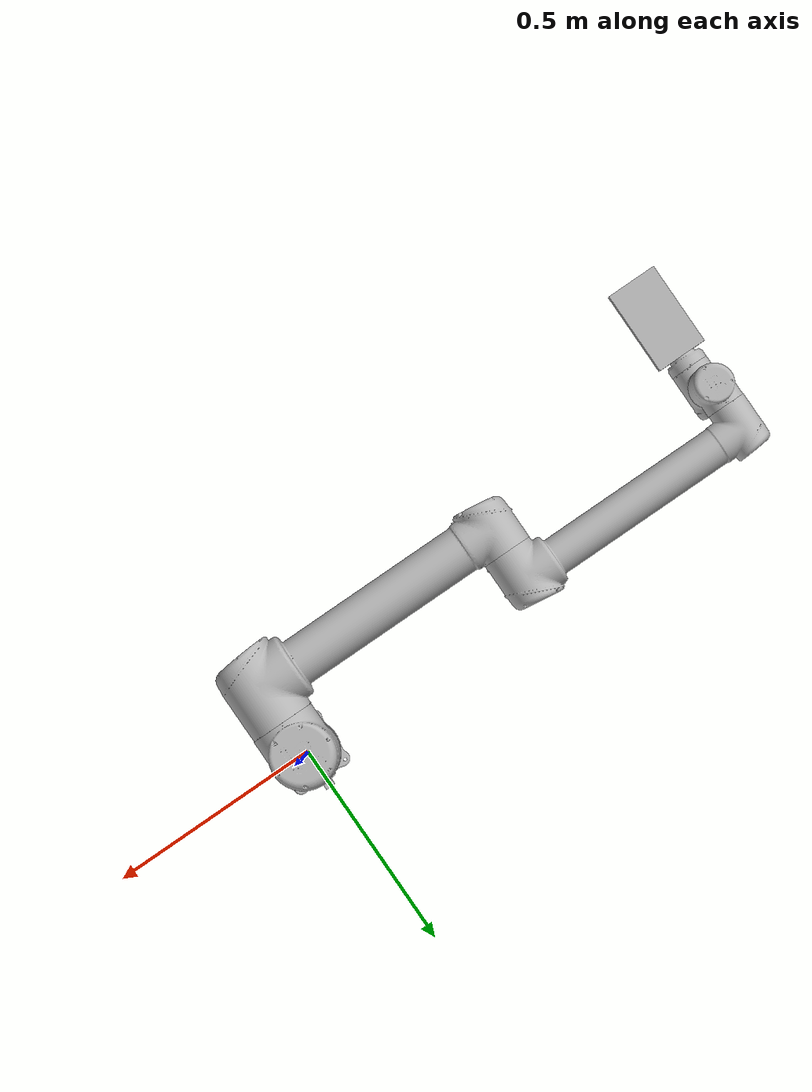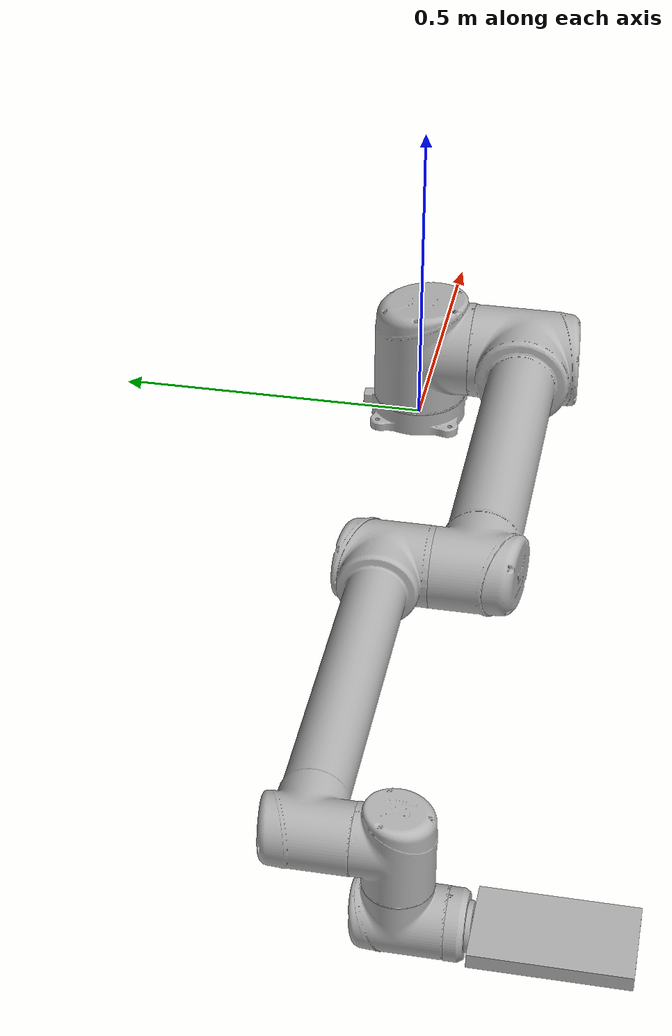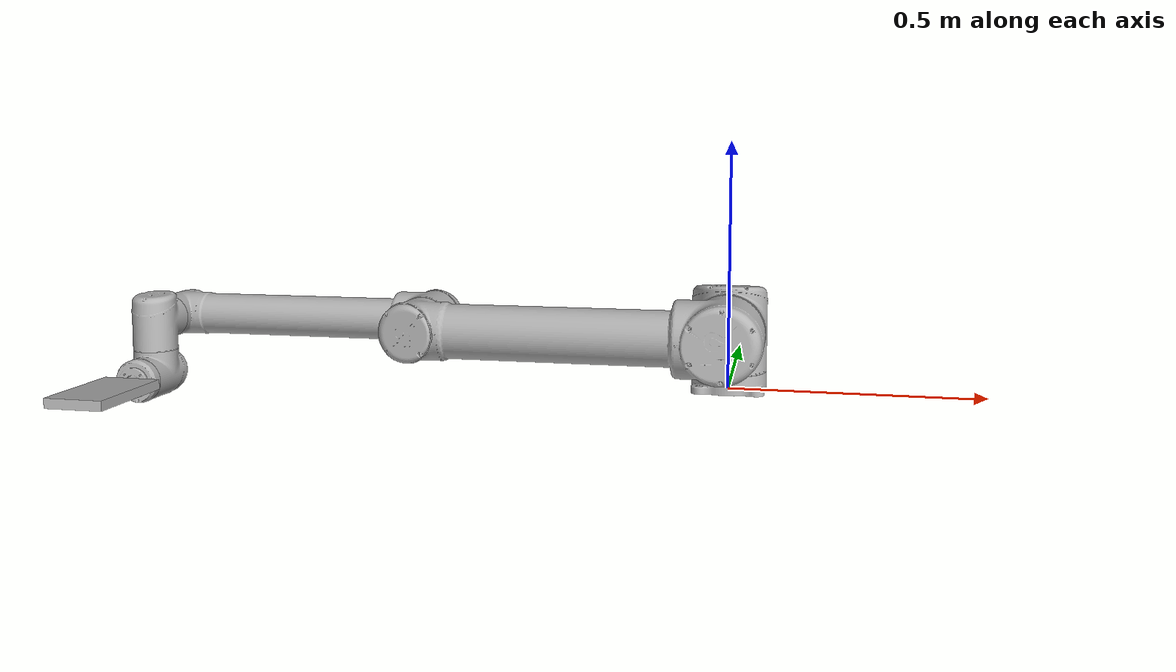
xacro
<?xml version="1.0"?>
<robot xmlns:xacro="http://www.ros.org/wiki/xacro"
       name="ur10" >

  <!-- common stuff -->
  <xacro:include filename="$(find ur_description)/urdf/common.gazebo.xacro" />

  <!-- ur10 -->
  <xacro:include filename="$(find ur_description)/urdf/ur10.urdf.xacro" />

  <!-- arm -->
  <xacro:ur10_robot prefix="" joint_limited="false"/>

  <!--xacro:ur10_robot prefix="u0_" joint_limited="false"/-->

  <link name="world" />

  <joint name="world_joint" type="fixed">
    <origin xyz="0.0 0.0 0.0" rpy="0.0 0.0 3.14159265" />
    <parent link="world" />
    <child link = "base_link" />
  </joint>

</robot>

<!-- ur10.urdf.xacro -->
<robot xmlns:xacro="http://www.ros.org/wiki/xacro">

<!--
  Author: Kelsey Hawkins
  Contributers: Jimmy Da Silva, Ajit Krisshna N L, Muhammad Asif Rana
-->

  <xacro:include filename="$(find ur_description)/urdf/ur.transmission.xacro" />
  <xacro:include filename="$(find ur_description)/urdf/ur.gazebo.xacro" />

  <property name="pi" value="3.14159265" />

  <!-- Inertia parameters -->
  <property name="base_mass" value="4.0" />  <!-- This mass might be incorrect -->
  <property name="shoulder_mass" value="7.778" />
  <property name="upper_arm_mass" value="12.93" />
  <property name="forearm_mass" value="3.87" />
  <property name="wrist_1_mass" value="1.96" />
  <property name="wrist_2_mass" value="1.96" />
  <property name="wrist_3_mass" value="0.202" />

  <property name="shoulder_cog" value="0.00008 0.00244 -0.037" />
  <property name="upper_arm_cog" value="0.00001 0.15061 0.38757" />
  <property name="forearm_cog" value="-0.00012 0.06112 0.1984" />
  <property name="wrist_1_cog" value="-0.00021 -0.00112 0.02269" />
  <property name="wrist_2_cog" value="-0.00021 0.00112 0.002269" />
  <property name="wrist_3_cog" value="0 -0.001156 -0.00149" />

  <!-- Kinematic model -->
  <!-- Properties from urcontrol.conf -->
  <property name="ur10_d1" value="0.1273" />
  <property name="ur10_a2" value="-0.612" />
  <property name="ur10_a3" value="-0.5723" />
  <property name="ur10_d4" value="0.163941" />
  <property name="ur10_d5" value="0.1157" />
  <property name="ur10_d6" value="0.0922" />

  <!-- Arbitrary offsets for shoulder/elbow joints -->
  <property name="shoulder_offset" value="0.220941" />  <!-- measured from model -->
  <property name="elbow_offset" value="-0.1719" /> <!-- measured from model -->

  <!-- link lengths used in model -->
  <property name="shoulder_height" value="${ur10_d1}" />
  <property name="upper_arm_length" value="${-ur10_a2}" />
  <property name="forearm_length" value="${-ur10_a3}" />
  <property name="wrist_1_length" value="${ur10_d4 - elbow_offset - shoulder_offset}" />
  <property name="wrist_2_length" value="${ur10_d5}" />
  <property name="wrist_3_length" value="${ur10_d6}" />

  <xacro:macro name="cylinder_inertial" params="radius length mass *origin">
    <inertial>
      <mass value="${mass}" />
      <insert_block name="origin" />
      <inertia ixx="${0.0833333 * mass * (3 * radius * radius + length * length)}" ixy="0.0" ixz="0.0"
        iyy="${0.0833333 * mass * (3 * radius * radius + length * length)}" iyz="0.0"
        izz="${0.5 * mass * radius * radius}" />
    </inertial>
  </xacro:macro>

  <xacro:macro name="ur10_robot" params="prefix joint_limited">

    <link name="${prefix}base_link" >
      <visual>
        <geometry>
          <mesh filename="package://ur_description/meshes/ur10/visual/base.dae"/>
        </geometry>
        <material name="LightGrey">
          <color rgba="0.7 0.7 0.7 1.0"/>
        </material>
      </visual>
      <collision>
        <geometry>
          <mesh filename="package://ur_description/meshes/ur10/collision/base.stl"/>
        </geometry>
      </collision>
      <xacro:cylinder_inertial radius="0.075" length="0.038" mass="${base_mass}">
        <origin xyz="0.0 0.0 0.0" rpy="0 0 0" />
      </xacro:cylinder_inertial>
    </link>

    <joint name="${prefix}shoulder_pan_joint" type="revolute">
      <parent link="${prefix}base_link" />
      <child link = "${prefix}shoulder_link" />
      <origin xyz="0.0 0.0 ${shoulder_height}" rpy="0.0 0.0 0.0" />
      <axis xyz="0 0 1" />
      <xacro:unless value="${joint_limited}">
        <limit lower="${-2.0 * pi}" upper="${2.0 * pi}" effort="930" velocity="21.6"/>
      </xacro:unless>
      <xacro:if value="${joint_limited}">
        <limit lower="${-pi}" upper="${pi}" effort="930" velocity="21.6"/>
      </xacro:if>
      <dynamics damping="0.0" friction="0.0"/>
    </joint>

    <link name="${prefix}shoulder_link">
      <visual>
        <geometry>
          <mesh filename="package://ur_description/meshes/ur10/visual/shoulder.dae"/>
        </geometry>
        <material name="LightGrey">
          <color rgba="0.7 0.7 0.7 1.0"/>
        </material>
      </visual>
      <collision>
        <geometry>
          <mesh filename="package://ur_description/meshes/ur10/collision/shoulder.stl"/>
        </geometry>
      </collision>
      <xacro:cylinder_inertial radius="0.075" length="0.178" mass="${shoulder_mass}">
        <origin xyz="0.0 0.0 0.0" rpy="0 0 0" />
      </xacro:cylinder_inertial>
    </link>

    <joint name="${prefix}shoulder_lift_joint" type="revolute">
      <parent link="${prefix}shoulder_link" />
      <child link = "${prefix}upper_arm_link" />
      <origin xyz="0.0 ${shoulder_offset} 0.0" rpy="0.0 ${pi / 2.0} 0.0" />
      <axis xyz="0 1 0" />
      <xacro:unless value="${joint_limited}">
        <limit lower="${-2.0 * pi}" upper="${2.0 * pi}" effort="930" velocity="21.6"/>
      </xacro:unless>
      <xacro:if value="${joint_limited}">
        <limit lower="${-pi}" upper="${pi}" effort="930" velocity="21.6"/>
      </xacro:if>
      <dynamics damping="0.0" friction="0.0"/>
    </joint>

    <link name="${prefix}upper_arm_link">
      <visual>
        <geometry>
          <mesh filename="package://ur_description/meshes/ur10/visual/upperarm.dae"/>
        </geometry>
        <material name="LightGrey">
          <color rgba="0.7 0.7 0.7 1.0"/>
        </material>
      </visual>
      <collision>
        <geometry>
          <mesh filename="package://ur_description/meshes/ur10/collision/upperarm.stl"/>
        </geometry>
      </collision>
      <xacro:cylinder_inertial radius="0.075" length="${-ur10_a2}" mass="${upper_arm_mass}">
        <origin xyz="0.0 0.0 ${-ur10_a2/2.0}" rpy="0 0 0" />
      </xacro:cylinder_inertial>
    </link>

    <joint name="${prefix}elbow_joint" type="revolute">
      <parent link="${prefix}upper_arm_link" />
      <child link = "${prefix}forearm_link" />
      <origin xyz="0.0 ${elbow_offset} ${upper_arm_length}" rpy="0.0 0.0 0.0" />
      <axis xyz="0 1 0" />
      <xacro:unless value="${joint_limited}">
        <limit lower="${-2.0 * pi}" upper="${2.0 * pi}" effort="150.0" velocity="3.15"/>
      </xacro:unless>
      <xacro:if value="${joint_limited}">
        <limit lower="${-pi}" upper="${pi}" effort="150.0" velocity="3.15"/>
      </xacro:if>
      <dynamics damping="0.0" friction="0.0"/>
    </joint>

    <link name="${prefix}forearm_link">
      <visual>
         <geometry>
          <mesh filename="package://ur_description/meshes/ur10/visual/forearm.dae"/>
        </geometry>
        <material name="LightGrey">
          <color rgba="0.7 0.7 0.7 1.0"/>
        </material>
      </visual>
      <collision>
        <geometry>
          <mesh filename="package://ur_description/meshes/ur10/collision/forearm.stl"/>
        </geometry>
      </collision>
      <xacro:cylinder_inertial radius="0.075" length="${-ur10_a3}" mass="${forearm_mass}">
        <origin xyz="0.0 0.0 ${-ur10_a3/2.0}" rpy="0 0 0" />
      </xacro:cylinder_inertial>
    </link>

    <joint name="${prefix}wrist_1_joint" type="revolute">
      <parent link="${prefix}forearm_link" />
      <child link = "${prefix}wrist_1_link" />
      <origin xyz="0.0 0.0 ${forearm_length}" rpy="0.0 ${pi / 2.0} 0.0" />
      <axis xyz="0 1 0" />
      <xacro:unless value="${joint_limited}">
        <limit lower="${-2.0 * pi}" upper="${2.0 * pi}" effort="54.0" velocity="3.2"/>
      </xacro:unless>
      <xacro:if value="${joint_limited}">
        <limit lower="${-pi}" upper="${pi}" effort="54.0" velocity="3.2"/>
      </xacro:if>
      <dynamics damping="0.0" friction="0.0"/>
    </joint>

    <link name="${prefix}wrist_1_link">
      <visual>
        <geometry>
          <mesh filename="package://ur_description/meshes/ur10/visual/wrist1.dae"/>
        </geometry>
        <material name="LightGrey">
          <color rgba="0.7 0.7 0.7 1.0"/>
        </material>
      </visual>
      <collision>
        <geometry>
          <mesh filename="package://ur_description/meshes/ur10/collision/wrist1.stl"/>
        </geometry>
      </collision>
      <xacro:cylinder_inertial radius="0.075" length="0.12" mass="${wrist_1_mass}">
        <origin xyz="0.0 0.0 0.0" rpy="0 0 0" />
      </xacro:cylinder_inertial>
    </link>

    <joint name="${prefix}wrist_2_joint" type="revolute">
      <parent link="${prefix}wrist_1_link" />
      <child link = "${prefix}wrist_2_link" />
      <origin xyz="0.0 ${wrist_1_length} 0.0" rpy="0.0 0.0 0.0" />
      <axis xyz="0 0 1" />
      <xacro:unless value="${joint_limited}">
        <limit lower="${-2.0 * pi}" upper="${2.0 * pi}" effort="54.0" velocity="3.2"/>
      </xacro:unless>
      <xacro:if value="${joint_limited}">
        <limit lower="${-pi}" upper="${pi}" effort="54.0" velocity="3.2"/>
      </xacro:if>
      <dynamics damping="0.0" friction="0.0"/>
    </joint>

    <link name="${prefix}wrist_2_link">
      <visual>
        <geometry>
          <mesh filename="package://ur_description/meshes/ur10/visual/wrist2.dae"/>
        </geometry>
        <material name="LightGrey">
          <color rgba="0.7 0.7 0.7 1.0"/>
        </material>
      </visual>
      <collision>
        <geometry>
          <mesh filename="package://ur_description/meshes/ur10/collision/wrist2.stl"/>
        </geometry>
      </collision>
      <xacro:cylinder_inertial radius="0.075" length="0.12" mass="${wrist_2_mass}">
        <origin xyz="0.0 0.0 0.0" rpy="0 0 0" />
      </xacro:cylinder_inertial>
    </link>

    <joint name="${prefix}wrist_3_joint" type="revolute">
      <parent link="${prefix}wrist_2_link" />
      <child link = "${prefix}wrist_3_link" />
      <origin xyz="0.0 0.0 ${wrist_2_length}" rpy="0.0 0.0 0.0" />
      <axis xyz="0 1 0" />
      <xacro:unless value="${joint_limited}">
        <limit lower="${-2.0 * pi}" upper="${2.0 * pi}" effort="54.0" velocity="3.2"/>
      </xacro:unless>
      <xacro:if value="${joint_limited}">
        <limit lower="${-pi}" upper="${pi}" effort="54.0" velocity="3.2"/>
      </xacro:if>
      <dynamics damping="0.0" friction="0.0"/>
    </joint>

    <link name="${prefix}wrist_3_link">
      <visual>
        <geometry>
          <mesh filename="package://ur_description/meshes/ur10/visual/wrist3.dae"/>
        </geometry>
        <material name="LightGrey">
          <color rgba="0.7 0.7 0.7 1.0"/>
        </material>
      </visual>
      <collision>
        <geometry>
          <mesh filename="package://ur_description/meshes/ur10/collision/wrist3.stl"/>
        </geometry>
      </collision>
      <xacro:cylinder_inertial radius="0.075" length="0.12" mass="${wrist_3_mass}">
        <origin xyz="0.0 0.0 0.0" rpy="0 0 0" />
      </xacro:cylinder_inertial>
    </link>

    <joint name="${prefix}ee_fixed_joint" type="fixed">
      <parent link="${prefix}wrist_3_link" />
      <child link = "${prefix}ee_link" />
      <origin xyz="0 ${wrist_3_length} 0" rpy="${pi/-2.0} 0 0"/>
    </joint>

    <link name="${prefix}ee_link">
      <static>1</static>
      <visual>
        <geometry>
          <box size="0.02 0.12 0.2"/>
        </geometry>
        <origin rpy="0 0 ${pi/-2.0}" xyz="0.0 0.0 0.1"/>
        <material name="LightGrey">
          <color rgba="0.7 0.7 0.7 1.0"/>
        </material>
      </visual>
      <collision>
        <geometry>
          <box size="0.02 0.12 0.2"/>
        </geometry>
          <origin rpy="0 0 ${pi/-2.0}" xyz="0.0 0.0 0.1"/>
          <max_contacts>10000</max_contacts>
          <surface>
             <bounce>
              <restitution_coefficient>1</restitution_coefficient>
              <threshold>0.001</threshold>
            </bounce>
            <friction>
              <ode>
                <mu>0</mu>
                <mu2>0</mu2>
              </ode>
            </friction>
            <contact>
              <ode>
                <kp>10e8</kp>
                <kd>100</kd>
              </ode>
            </contact>
          </surface>
          <inertial>
            <mass>1</mass>
           <inertia>
            <ixx>1</ixx>
            <ixy>0</ixy>
            <ixz>0</ixz>
            <iyy>1</iyy>
            <iyz>0</iyz>
            <izz>1</izz>
           </inertia>
         </inertial>
      </collision>
    </link>
    <gazebo reference="${prefix}ee_link">
      <material>Gazebo/Red</material>
      <selfCollide>true</selfCollide>
      <maxVel>5e10</maxVel>
    </gazebo>

    <joint name="${prefix}pingpong_fixed_joint1" type="fixed">
      <parent link="${prefix}ee_link" />
      <child link = "${prefix}pingpong_link1" />
      <origin xyz="0 0.0 0.2" rpy="0 0 0"/>
    </joint>

    <link name="${prefix}pingpong_link1">
    </link>

    <joint name="${prefix}pingpong_fixed_joint2" type="fixed">
      <parent link="${prefix}ee_link" />
      <child link = "${prefix}pingpong_link2" />
      <origin xyz="0.05 0.0 0.2" rpy="0 0 0"/>
    </joint>

    <link name="${prefix}pingpong_link2">
    </link>

    <joint name="${prefix}pingpong_fixed_joint3" type="fixed">
      <parent link="${prefix}ee_link" />
      <child link = "${prefix}pingpong_link3" />
      <origin xyz="0.05 0.05 0.2" rpy="0 0 0"/>
    </joint>

    <link name="${prefix}pingpong_link3">
    </link>

    <xacro:ur_arm_transmission prefix="${prefix}" />
    <xacro:ur_arm_gazebo prefix="${prefix}" />

    <!-- ROS base_link to UR 'Base' Coordinates transform -->
    <link name="${prefix}base"/>
    <joint name="${prefix}base_link-base_fixed_joint" type="fixed">
      <!-- NOTE: this rotation is only needed as long as base_link itself is
                 not corrected wrt the real robot (ie: rotated over 180
                 degrees)
      -->
      <origin xyz="0 0 0" rpy="0 0 ${-pi}"/>
      <parent link="${prefix}base_link"/>
      <child link="${prefix}base"/>
    </joint>

    <!-- Frame coincident with all-zeros TCP on UR controller -->
    <link name="${prefix}tool0"/>
    <joint name="${prefix}wrist_3_link-tool0_fixed_joint" type="fixed">
      <origin xyz="0 ${wrist_3_length+0.3} 0" rpy="${pi/-2.0} 0 0"/>
      <parent link="${prefix}wrist_3_link"/>
      <child link="${prefix}tool0"/>
    </joint>

  </xacro:macro>
</robot>
